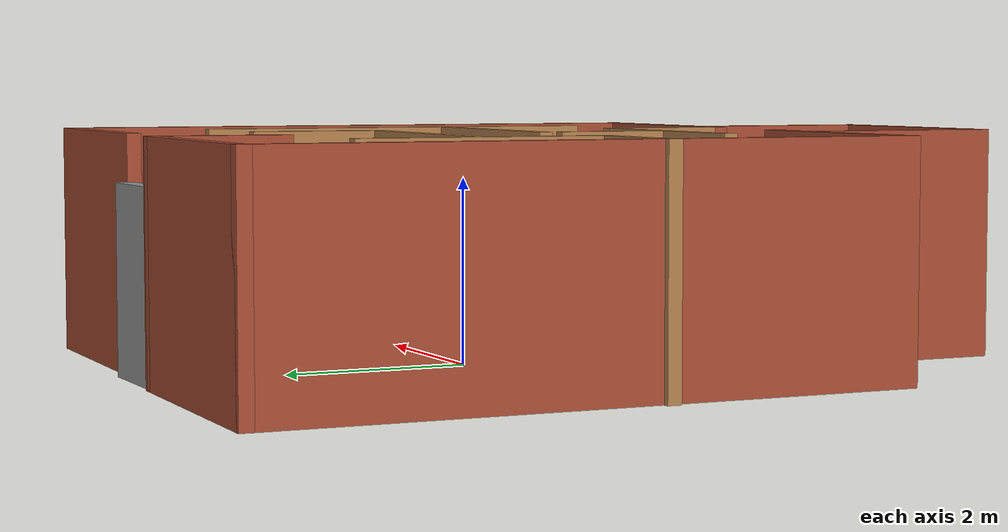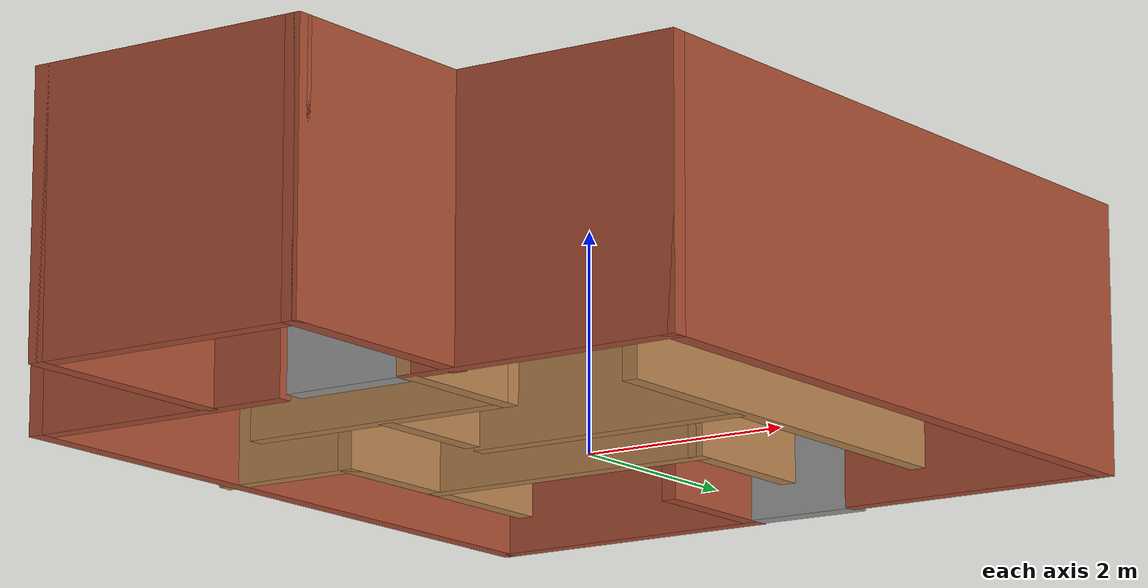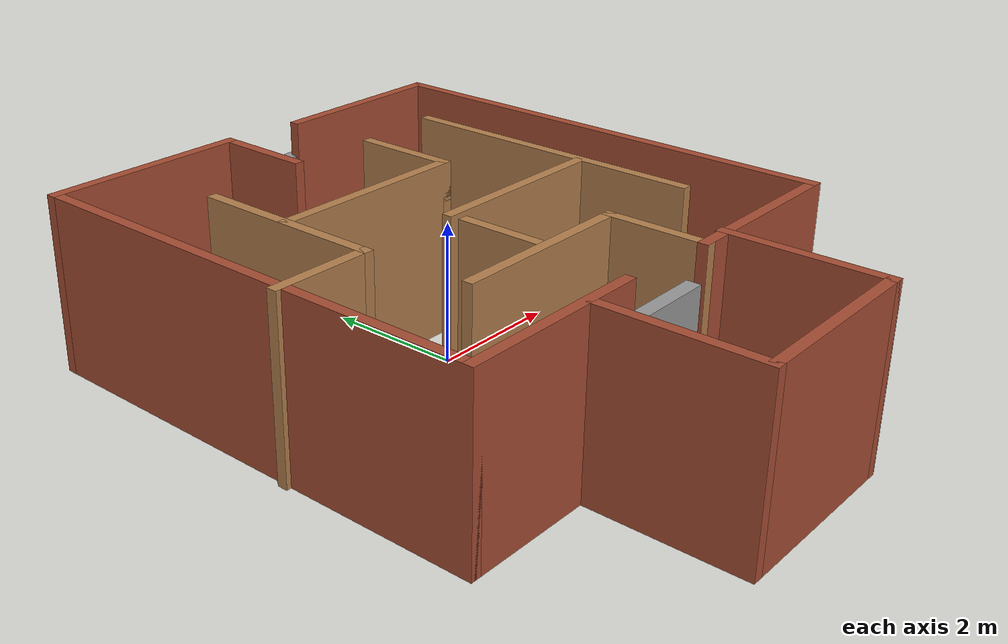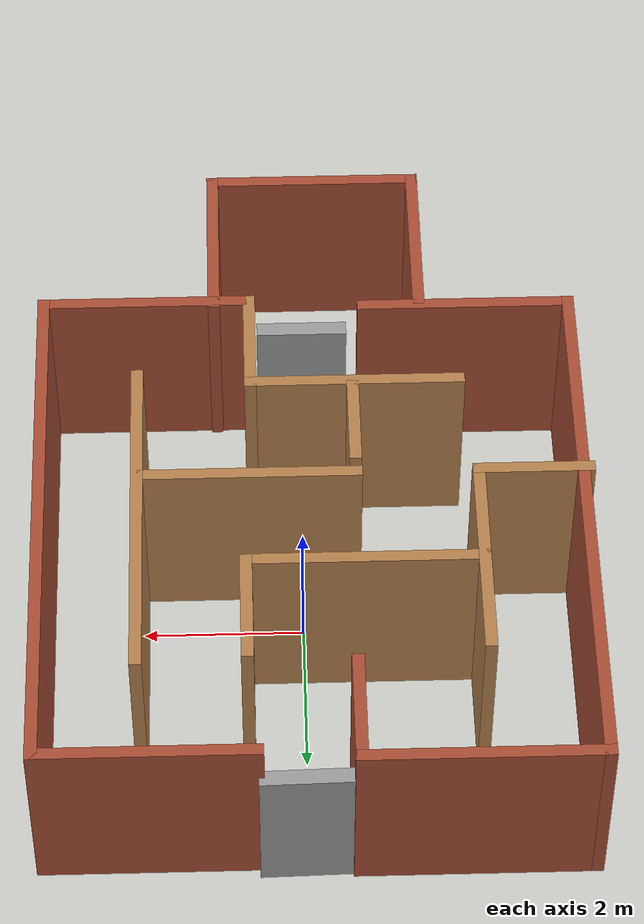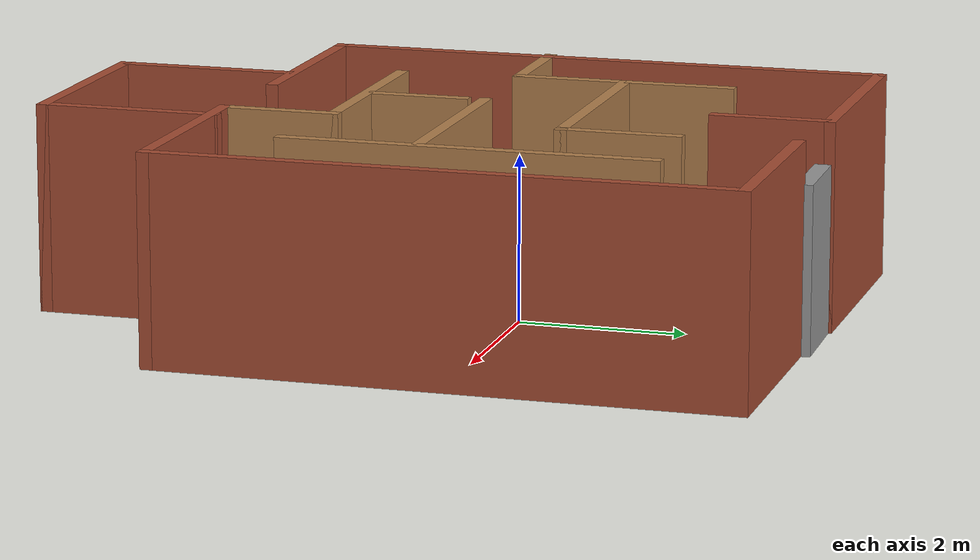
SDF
<?xml version='1.0'?>
<sdf version='1.7'>
  <model name='maze'>
    <pose>-0.155905 -0.977877 0 0 -0 0</pose>
    <link name='Door_0'>
      <collision name='Door_0_Collision'>
        <geometry>
          <box>
            <size>1.14334 0.2 2</size>
          </box>
        </geometry>
        <pose>0 0 1 0 -0 0</pose>
      </collision>
      <visual name='Door_0_Visual'>
        <pose>0 0 1 0 -0 0</pose>
        <geometry>
          <box>
            <size>1.14334 0.2 2</size>
          </box>
        </geometry>
        <material>
          <script>
            <uri>file://media/materials/scripts/gazebo.material</uri>
            <name>Gazebo/Grey</name>
          </script>
        </material>
      </visual>
      <pose>0.092757 -2.3864 0 0 -0 0</pose>
    </link>
    <link name='Door_1'>
      <collision name='Door_1_Collision'>
        <geometry>
          <box>
            <size>1.15389 0.2 2</size>
          </box>
        </geometry>
        <pose>0 0 1 0 -0 0</pose>
      </collision>
      <visual name='Door_1_Visual'>
        <pose>0 0 1 0 -0 0</pose>
        <geometry>
          <box>
            <size>1.15389 0.2 2</size>
          </box>
        </geometry>
        <material>
          <script>
            <uri>file://media/materials/scripts/gazebo.material</uri>
            <name>Gazebo/Grey</name>
          </script>
        </material>
      </visual>
      <pose>0.1781 4.46775 0 0 0 -3.11885</pose>
    </link>
    <link name='Wall_0'>
      <collision name='Wall_0_Collision'>
        <geometry>
          <box>
            <size>7 0.15 2.5</size>
          </box>
        </geometry>
        <pose>0 0 1.25 0 -0 0</pose>
      </collision>
      <visual name='Wall_0_Visual'>
        <pose>0 0 1.25 0 -0 0</pose>
        <geometry>
          <box>
            <size>7 0.15 2.5</size>
          </box>
        </geometry>
        <material>
          <script>
            <uri>file://media/materials/scripts/gazebo.material</uri>
            <name>Gazebo/Bricks</name>
          </script>
          <ambient>1 1 1 1</ambient>
        </material>
        <meta>
          <layer>0</layer>
        </meta>
      </visual>
      <pose>-3.28923 1.09265 0 0 -0 -1.5708</pose>
    </link>
    <link name='Wall_1'>
      <collision name='Wall_1_Collision'>
        <geometry>
          <box>
            <size>2.75 0.15 2.5</size>
          </box>
        </geometry>
        <pose>0 0 1.25 0 -0 0</pose>
      </collision>
      <visual name='Wall_1_Visual'>
        <pose>0 0 1.25 0 -0 0</pose>
        <geometry>
          <box>
            <size>2.75 0.15 2.5</size>
          </box>
        </geometry>
        <material>
          <script>
            <uri>file://media/materials/scripts/gazebo.material</uri>
            <name>Gazebo/Bricks</name>
          </script>
          <ambient>1 1 1 1</ambient>
        </material>
        <meta>
          <layer>0</layer>
        </meta>
      </visual>
      <pose>-1.98923 -2.33235 0 0 -0 0</pose>
    </link>
    <link name='Wall_10'>
      <collision name='Wall_10_Collision'>
        <geometry>
          <box>
            <size>1.5 0.15 2.5</size>
          </box>
        </geometry>
        <pose>0 0 1.25 0 -0 0</pose>
      </collision>
      <visual name='Wall_10_Visual'>
        <pose>0 0 1.25 0 -0 0</pose>
        <geometry>
          <box>
            <size>1.5 0.15 2.5</size>
          </box>
        </geometry>
        <material>
          <script>
            <uri>file://media/materials/scripts/gazebo.material</uri>
            <name>Gazebo/Wood</name>
          </script>
          <ambient>1 1 1 1</ambient>
        </material>
        <meta>
          <layer>0</layer>
        </meta>
      </visual>
      <pose>0.856081 2.34759 0 0 -0 1.5708</pose>
    </link>
    <link name='Wall_12'>
      <collision name='Wall_12_Collision'>
        <geometry>
          <box>
            <size>2.75 0.15 2.5</size>
          </box>
        </geometry>
        <pose>0 0 1.25 0 -0 0</pose>
      </collision>
      <visual name='Wall_12_Visual'>
        <pose>0 0 1.25 0 -0 0</pose>
        <geometry>
          <box>
            <size>2.75 0.15 2.5</size>
          </box>
        </geometry>
        <material>
          <script>
            <uri>file://media/materials/scripts/gazebo.material</uri>
            <name>Gazebo/Bricks</name>
          </script>
          <ambient>1 1 1 1</ambient>
        </material>
        <meta>
          <layer>0</layer>
        </meta>
      </visual>
      <pose>2.05862 4.402 0 0 -0 0</pose>
    </link>
    <link name='Wall_13'>
      <collision name='Wall_13_Collision'>
        <geometry>
          <box>
            <size>7 0.15 2.5</size>
          </box>
        </geometry>
        <pose>0 0 1.25 0 -0 0</pose>
      </collision>
      <visual name='Wall_13_Visual'>
        <pose>0 0 1.25 0 -0 0</pose>
        <geometry>
          <box>
            <size>7 0.15 2.5</size>
          </box>
        </geometry>
        <material>
          <script>
            <uri>file://media/materials/scripts/gazebo.material</uri>
            <name>Gazebo/Bricks</name>
          </script>
          <ambient>1 1 1 1</ambient>
        </material>
        <meta>
          <layer>0</layer>
        </meta>
      </visual>
      <pose>3.35862 0.976999 0 0 -0 -1.5708</pose>
    </link>
    <link name='Wall_14'>
      <collision name='Wall_14_Collision'>
        <geometry>
          <box>
            <size>2.75 0.15 2.5</size>
          </box>
        </geometry>
        <pose>0 0 1.25 0 -0 0</pose>
      </collision>
      <visual name='Wall_14_Visual'>
        <pose>0 0 1.25 0 -0 0</pose>
        <geometry>
          <box>
            <size>2.75 0.15 2.5</size>
          </box>
        </geometry>
        <material>
          <script>
            <uri>file://media/materials/scripts/gazebo.material</uri>
            <name>Gazebo/Bricks</name>
          </script>
          <ambient>1 1 1 1</ambient>
        </material>
        <meta>
          <layer>0</layer>
        </meta>
      </visual>
      <pose>2.05862 -2.448 0 0 -0 3.14159</pose>
    </link>
    <link name='Wall_15'>
      <collision name='Wall_15_Collision'>
        <geometry>
          <box>
            <size>1.5 0.15 2.5</size>
          </box>
        </geometry>
        <pose>0 0 1.25 0 -0 0</pose>
      </collision>
      <visual name='Wall_15_Visual'>
        <pose>0 0 1.25 0 -0 0</pose>
        <geometry>
          <box>
            <size>1.5 0.15 2.5</size>
          </box>
        </geometry>
        <material>
          <script>
            <uri>file://media/materials/scripts/gazebo.material</uri>
            <name>Gazebo/Wood</name>
          </script>
          <ambient>1 1 1 1</ambient>
        </material>
        <meta>
          <layer>0</layer>
        </meta>
      </visual>
      <pose>0.758624 -1.773 0 0 -0 1.5708</pose>
    </link>
    <link name='Wall_16'>
      <collision name='Wall_16_Collision'>
        <geometry>
          <box>
            <size>2.75 0.15 2.5</size>
          </box>
        </geometry>
        <pose>0 0 1.25 0 -0 0</pose>
      </collision>
      <visual name='Wall_16_Visual'>
        <pose>0 0 1.25 0 -0 0</pose>
        <geometry>
          <box>
            <size>2.75 0.15 2.5</size>
          </box>
        </geometry>
        <material>
          <script>
            <uri>file://media/materials/scripts/gazebo.material</uri>
            <name>Gazebo/Wood</name>
          </script>
          <ambient>1 1 1 1</ambient>
        </material>
        <meta>
          <layer>0</layer>
        </meta>
      </visual>
      <pose>-0.541376 -1.098 0 0 -0 3.14159</pose>
    </link>
    <link name='Wall_19'>
      <collision name='Wall_19_Collision'>
        <geometry>
          <box>
            <size>1.25 0.15 2.5</size>
          </box>
        </geometry>
        <pose>0 0 1.25 0 -0 0</pose>
      </collision>
      <visual name='Wall_19_Visual'>
        <pose>0 0 1.25 0 -0 0</pose>
        <geometry>
          <box>
            <size>1.25 0.15 2.5</size>
          </box>
        </geometry>
        <material>
          <script>
            <uri>file://media/materials/scripts/gazebo.material</uri>
            <name>Gazebo/Wood</name>
          </script>
          <ambient>1 1 1 1</ambient>
        </material>
        <meta>
          <layer>0</layer>
        </meta>
      </visual>
      <pose>-0.51356 -0.460563 0 0 -0 1.5708</pose>
    </link>
    <link name='Wall_23'>
      <collision name='Wall_23_Collision'>
        <geometry>
          <box>
            <size>4.5 0.15 2.5</size>
          </box>
        </geometry>
        <pose>0 0 1.25 0 -0 0</pose>
      </collision>
      <visual name='Wall_23_Visual'>
        <pose>0 0 1.25 0 -0 0</pose>
        <geometry>
          <box>
            <size>4.5 0.15 2.5</size>
          </box>
        </geometry>
        <material>
          <script>
            <uri>file://media/materials/scripts/gazebo.material</uri>
            <name>Gazebo/Wood</name>
          </script>
          <ambient>1 1 1 1</ambient>
        </material>
        <meta>
          <layer>0</layer>
        </meta>
      </visual>
      <pose>2.16959 0.931685 0 0 -0 -1.5708</pose>
    </link>
    <link name='Wall_25'>
      <collision name='Wall_25_Collision'>
        <geometry>
          <box>
            <size>2.75 0.15 2.5</size>
          </box>
        </geometry>
        <pose>0 0 1.25 0 -0 0</pose>
      </collision>
      <visual name='Wall_25_Visual'>
        <pose>0 0 1.25 0 -0 0</pose>
        <geometry>
          <box>
            <size>2.75 0.15 2.5</size>
          </box>
        </geometry>
        <material>
          <script>
            <uri>file://media/materials/scripts/gazebo.material</uri>
            <name>Gazebo/Wood</name>
          </script>
          <ambient>1 1 1 1</ambient>
        </material>
        <meta>
          <layer>0</layer>
        </meta>
      </visual>
      <pose>0.78644 0.354143 0 0 -0 0</pose>
    </link>
    <link name='Wall_27'>
      <collision name='Wall_27_Collision'>
        <geometry>
          <box>
            <size>2.25 0.15 2.5</size>
          </box>
        </geometry>
        <pose>0 0 1.25 0 -0 0</pose>
      </collision>
      <visual name='Wall_27_Visual'>
        <pose>0 0 1.25 0 -0 0</pose>
        <geometry>
          <box>
            <size>2.25 0.15 2.5</size>
          </box>
        </geometry>
        <material>
          <script>
            <uri>file://media/materials/scripts/gazebo.material</uri>
            <name>Gazebo/Bricks</name>
          </script>
          <ambient>1 1 1 1</ambient>
        </material>
        <meta>
          <layer>0</layer>
        </meta>
      </visual>
      <pose>-1.39592 -3.46765 0 0 -0 -1.5708</pose>
    </link>
    <link name='Wall_28'>
      <collision name='Wall_28_Collision'>
        <geometry>
          <box>
            <size>2.75 0.15 2.5</size>
          </box>
        </geometry>
        <pose>0 0 1.25 0 -0 0</pose>
      </collision>
      <visual name='Wall_28_Visual'>
        <pose>0 0 1.25 0 -0 0</pose>
        <geometry>
          <box>
            <size>2.75 0.15 2.5</size>
          </box>
        </geometry>
        <material>
          <script>
            <uri>file://media/materials/scripts/gazebo.material</uri>
            <name>Gazebo/Bricks</name>
          </script>
          <ambient>1 1 1 1</ambient>
        </material>
        <meta>
          <layer>0</layer>
        </meta>
      </visual>
      <pose>-0.095918 -4.51765 0 0 -0 0</pose>
    </link>
    <link name='Wall_29'>
      <collision name='Wall_29_Collision'>
        <geometry>
          <box>
            <size>2.25 0.15 2.5</size>
          </box>
        </geometry>
        <pose>0 0 1.25 0 -0 0</pose>
      </collision>
      <visual name='Wall_29_Visual'>
        <pose>0 0 1.25 0 -0 0</pose>
        <geometry>
          <box>
            <size>2.25 0.15 2.5</size>
          </box>
        </geometry>
        <material>
          <script>
            <uri>file://media/materials/scripts/gazebo.material</uri>
            <name>Gazebo/Bricks</name>
          </script>
          <ambient>1 1 1 1</ambient>
        </material>
        <meta>
          <layer>0</layer>
        </meta>
      </visual>
      <pose>1.20408 -3.46765 0 0 -0 1.5708</pose>
    </link>
    <link name='Wall_3'>
      <collision name='Wall_3_Collision'>
        <geometry>
          <box>
            <size>3 0.15 2.5</size>
          </box>
        </geometry>
        <pose>0 0 1.25 0 -0 0</pose>
      </collision>
      <visual name='Wall_3_Visual'>
        <pose>0 0 1.25 0 -0 0</pose>
        <geometry>
          <box>
            <size>3 0.15 2.5</size>
          </box>
        </geometry>
        <material>
          <script>
            <uri>file://media/materials/scripts/gazebo.material</uri>
            <name>Gazebo/Bricks</name>
          </script>
          <ambient>1 1 1 1</ambient>
        </material>
        <meta>
          <layer>0</layer>
        </meta>
      </visual>
      <pose>-1.86423 4.51765 0 0 -0 0</pose>
    </link>
    <link name='Wall_4'>
      <collision name='Wall_4_Collision'>
        <geometry>
          <box>
            <size>1.5 0.15 2.5</size>
          </box>
        </geometry>
        <pose>0 0 1.25 0 -0 0</pose>
      </collision>
      <visual name='Wall_4_Visual'>
        <pose>0 0 1.25 0 -0 0</pose>
        <geometry>
          <box>
            <size>1.5 0.15 2.5</size>
          </box>
        </geometry>
        <material>
          <script>
            <uri>file://media/materials/scripts/gazebo.material</uri>
            <name>Gazebo/Bricks</name>
          </script>
          <ambient>1 1 1 1</ambient>
        </material>
        <meta>
          <layer>0</layer>
        </meta>
      </visual>
      <pose>-0.439233 3.84265 0 0 -0 -1.5708</pose>
    </link>
    <link name='Wall_6'>
      <collision name='Wall_6_Collision'>
        <geometry>
          <box>
            <size>1.5 0.15 2.5</size>
          </box>
        </geometry>
        <pose>0 0 1.25 0 -0 0</pose>
      </collision>
      <visual name='Wall_6_Visual'>
        <pose>0 0 1.25 0 -0 0</pose>
        <geometry>
          <box>
            <size>1.5 0.15 2.5</size>
          </box>
        </geometry>
        <material>
          <script>
            <uri>file://media/materials/scripts/gazebo.material</uri>
            <name>Gazebo/Wood</name>
          </script>
          <ambient>1 1 1 1</ambient>
        </material>
        <meta>
          <layer>0</layer>
        </meta>
      </visual>
      <pose>-2.68362 0.354143 0 0 -0 0</pose>
    </link>
    <link name='Wall_7'>
      <collision name='Wall_7_Collision'>
        <geometry>
          <box>
            <size>2.75 0.15 2.5</size>
          </box>
        </geometry>
        <pose>0 0 1.25 0 -0 0</pose>
      </collision>
      <visual name='Wall_7_Visual'>
        <pose>0 0 1.25 0 -0 0</pose>
        <geometry>
          <box>
            <size>2.75 0.15 2.5</size>
          </box>
        </geometry>
        <material>
          <script>
            <uri>file://media/materials/scripts/gazebo.material</uri>
            <name>Gazebo/Wood</name>
          </script>
          <ambient>1 1 1 1</ambient>
        </material>
        <meta>
          <layer>0</layer>
        </meta>
      </visual>
      <pose>-2.00862 1.65414 0 0 -0 1.5708</pose>
    </link>
    <link name='Wall_9'>
      <collision name='Wall_9_Collision'>
        <geometry>
          <box>
            <size>3 0.15 2.5</size>
          </box>
        </geometry>
        <pose>0 0 1.25 0 -0 0</pose>
      </collision>
      <visual name='Wall_9_Visual'>
        <pose>0 0 1.25 0 -0 0</pose>
        <geometry>
          <box>
            <size>3 0.15 2.5</size>
          </box>
        </geometry>
        <material>
          <script>
            <uri>file://media/materials/scripts/gazebo.material</uri>
            <name>Gazebo/Wood</name>
          </script>
          <ambient>1 1 1 1</ambient>
        </material>
        <meta>
          <layer>0</layer>
        </meta>
      </visual>
      <pose>-0.568919 1.67259 0 0 -0 0</pose>
    </link>
    <static>1</static>
  </model>
</sdf>
